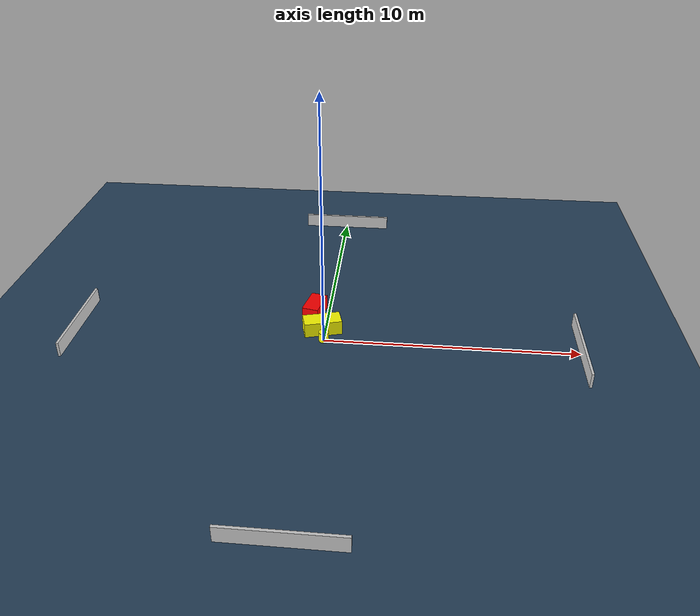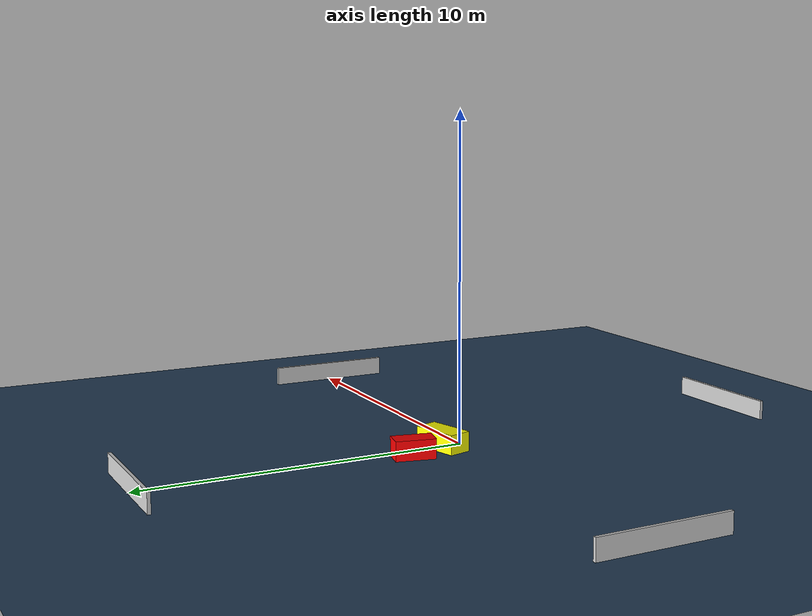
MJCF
<?xml version="1.0" ?>
<mujoco model="generated_environment">
  <option timestep="0.01" integrator="RK4" cone="elliptic"/>
  <default>
    <geom density="1"/>
  </default>
  <asset>
    <texture builtin="gradient" height="3072" name="skybox" rgb1="0.3 0.5 0.7" rgb2="0 0 0" type="skybox" width="512"/>
    <texture builtin="checker" height="300" name="groundplane" rgb1="0.2 0.3 0.4" rgb2="0.1 0.2 0.3" type="2d" width="300"/>
    <material name="groundplane" reflectance="0.2" texrepeat="5 5" texture="groundplane"/>
  </asset>
  <worldbody>
    <light dir="0 0 -1" directional="true" pos="0 0 1.5"/>
    <geom condim="3" friction="0.5 0.005 0.001" material="groundplane" name="floor" pos="0 0 0" size="0 0 0.05" type="plane"/>
    <body name="walls">
      <geom name="wall_1" condim="4" pos="-10.0 0.0 0.3" rgba="0.800000011920929 0.800000011920929 0.800000011920929 1.0" size="0.05 2.0 0.3" type="box"/>
      <geom name="wall_2" condim="4" pos="10.0 0.0 0.3" rgba="0.800000011920929 0.800000011920929 0.800000011920929 1.0" size="0.05 2.0 0.3" type="box"/>
      <geom name="wall_3" condim="4" pos="0.0 -10.0 0.3" rgba="0.800000011920929 0.800000011920929 0.800000011920929 1.0" size="2.0 0.05 0.3" type="box"/>
      <geom name="wall_4" condim="4" pos="0.0 10.0 0.3" rgba="0.800000011920929 0.800000011920929 0.800000011920929 1.0" size="2.0 0.05 0.3" type="box"/>
    </body>
    <body name="robot">
      <joint name="joint_x" type="slide" pos="0 0 0" axis="1 0 0"/>
      <joint name="joint_y" type="slide" pos="0 0 0" axis="0 1 0"/>
      <geom name="robot" type="cylinder" pos="0.0 0.0 0.2" size="0.2 0.2 0.0" mass="5.0" friction="1.0 0.005 0.0001" condim="4" rgba="1.0 1.0 0.0 1.0"/>
    </body>
    <body name="obstacle_1_movable">
      <geom name="obstacle_1_movable" condim="4" pos="-0.14285616813542987 0.6528850079323345 0.3" euler="0 0 15.171388474510547" friction="0.0 0.005 0.001" rgba="1.0 1.0 0.0 1.0" size="0.751205212074542 0.3581858899748849 0.3" type="box" mass="0.1"/>
      <joint type="free"/>
    </body>
    <body name="obstacle_2_static">
      <geom name="obstacle_2_static" condim="4" pos="-0.5936846378259055 1.8582285810158798 0.3" euler="0 0 77.66313208858926" friction="0.0 0.005 0.001" rgba="1.0 0.0 0.0 1.0" size="0.6096922549059278 0.3339323935782136 0.3" type="box"/>
    </body>
  </worldbody>
  <actuator>
    <motor name="actuator_x" joint="joint_x" gear="1" ctrlrange="-1 1"/>
    <motor name="actuator_y" joint="joint_y" gear="1" ctrlrange="-1 1"/>
  </actuator>
</mujoco>
